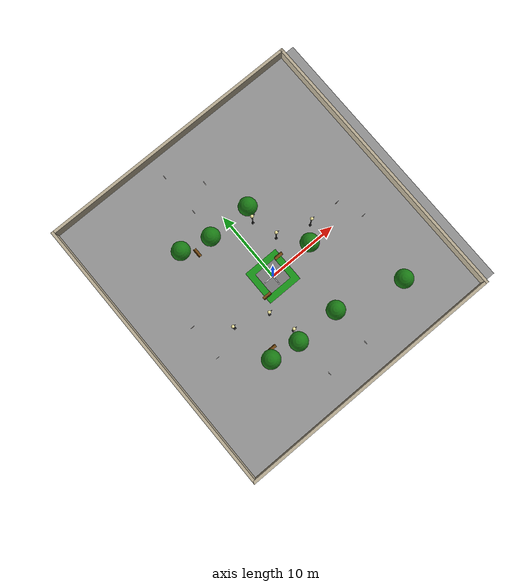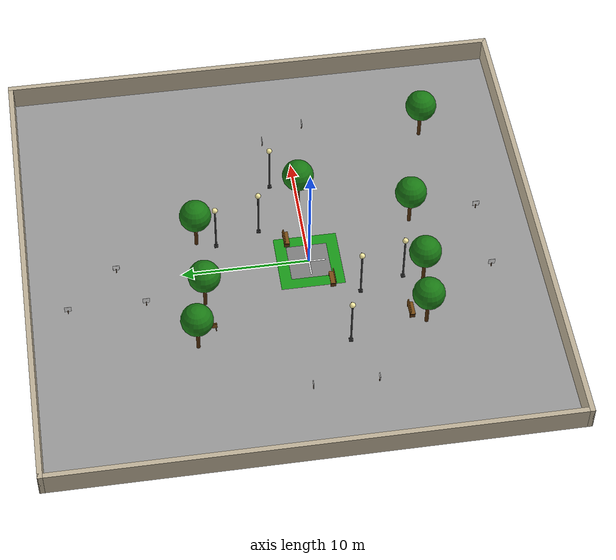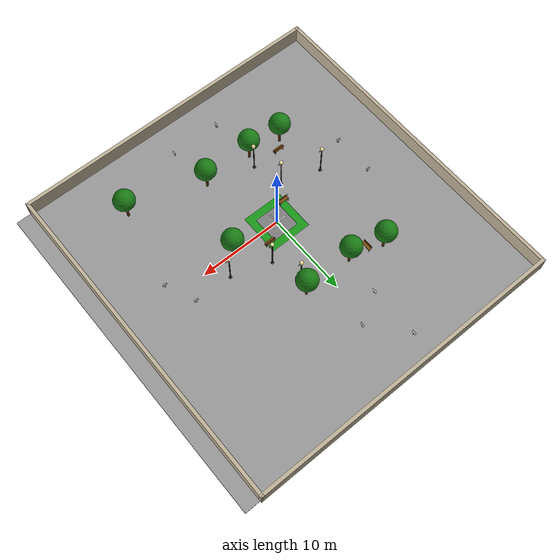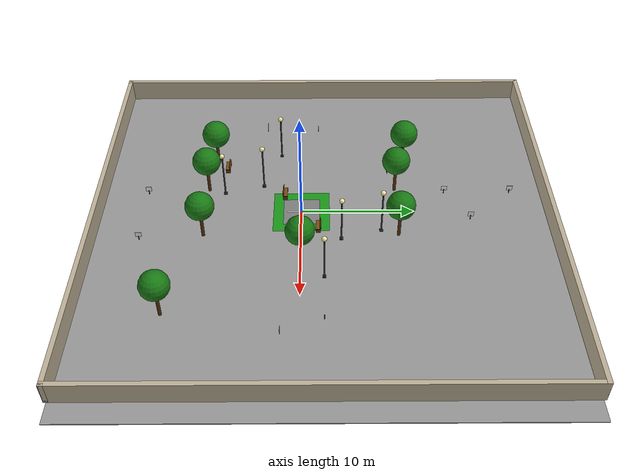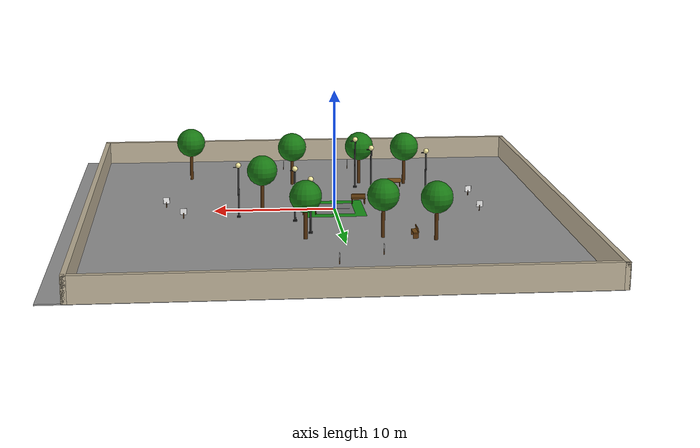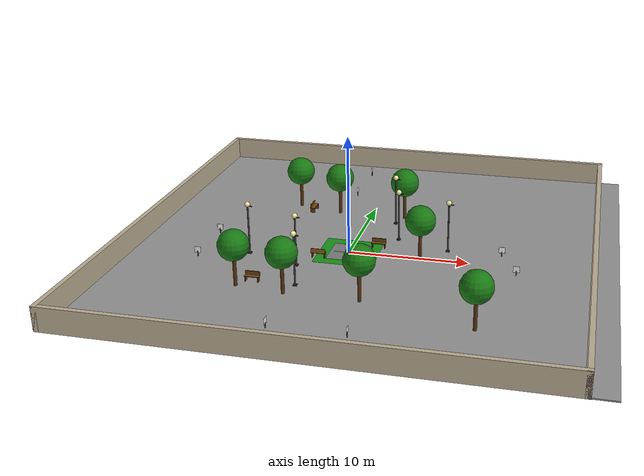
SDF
<sdf version="1.6">
 <world name="mixed_town_v2">
  <gravity>0 0 -9.8</gravity>
  <physics type="ode">
   <real_time_update_rate>200.0</real_time_update_rate>
   <max_step_size>0.005</max_step_size>
   <real_time_factor>1</real_time_factor>
   <ode>
    <solver><type>quick</type><iters>40</iters><sor>1.3</sor></solver>
    <constraints>
     <cfm>0.0001</cfm>
     <erp>0.2</erp>
     <contact_max_correcting_vel>5.0</contact_max_correcting_vel>
     <contact_surface_layer>0.002</contact_surface_layer>
    </constraints>
   </ode>
  </physics>
  <scene>
   <ambient>0.70 0.70 0.70 1</ambient>
   <background>0.55 0.82 0.94 1</background>
   <shadows>false</shadows>
  </scene>
  <plugin filename="gz-sim-physics-system" name="gz::sim::systems::Physics"/>
  <plugin filename="gz-sim-user-commands-system" name="gz::sim::systems::UserCommands"/>
  <plugin filename="gz-sim-scene-broadcaster-system" name="gz::sim::systems::SceneBroadcaster"/>
  <plugin filename="gz-sim-sensors-system" name="gz::sim::systems::Sensors">
   <render_engine>ogre2</render_engine>
  </plugin>
  <plugin filename="gz-sim-imu-system" name="gz::sim::systems::Imu"/>
  <include><uri>model://sun</uri></include>
  <model name="grey_ground">
   <static>true</static>
   <pose>2 2 -0.05 0 0 0</pose>
   <link name="link">
    <collision name="col"><geometry><box><size>40 40 0.1</size></box></geometry></collision>
    <visual name="vis">
     <geometry><box><size>40 40 0.1</size></box></geometry>
     <material>
      <ambient>1 1 1 1</ambient>
      <diffuse>1 1 1 1</diffuse>
      <script><uri>file://media/materials/scripts/gazebo.material</uri><name>Gazebo/Grey</name></script>
     </material>
    </visual>
   </link>
  </model>
  <model name="wall_north">
   <static>true</static>
   <pose>1 22 1 0 0 0</pose>
   <link name="link">
    <collision name="col"><geometry><box><size>38.4 0.4 2</size></box></geometry></collision>
    <visual name="vis">
     <geometry><box><size>38.4 0.4 2</size></box></geometry>
     <material><ambient>0.75 0.70 0.60 1</ambient><diffuse>0.75 0.70 0.60 1</diffuse></material>
    </visual>
   </link>
  </model>
  <model name="wall_south">
   <static>true</static>
   <pose>1 -18 1 0 0 0</pose>
   <link name="link">
    <collision name="col"><geometry><box><size>38.4 0.4 2</size></box></geometry></collision>
    <visual name="vis">
     <geometry><box><size>38.4 0.4 2</size></box></geometry>
     <material><ambient>0.75 0.70 0.60 1</ambient><diffuse>0.75 0.70 0.60 1</diffuse></material>
    </visual>
   </link>
  </model>
  <model name="wall_east">
   <static>true</static>
   <pose>20 2 1 0 0 0</pose>
   <link name="link">
    <collision name="col"><geometry><box><size>0.4 40.4 2</size></box></geometry></collision>
    <visual name="vis">
     <geometry><box><size>0.4 40.4 2</size></box></geometry>
     <material><ambient>0.75 0.70 0.60 1</ambient><diffuse>0.75 0.70 0.60 1</diffuse></material>
    </visual>
   </link>
  </model>
  <model name="wall_west">
   <static>true</static>
   <pose>-18 2 1 0 0 0</pose>
   <link name="link">
    <collision name="col"><geometry><box><size>0.4 40.4 2</size></box></geometry></collision>
    <visual name="vis">
     <geometry><box><size>0.4 40.4 2</size></box></geometry>
     <material><ambient>0.75 0.70 0.60 1</ambient><diffuse>0.75 0.70 0.60 1</diffuse></material>
    </visual>
   </link>
  </model>
  <model name="green_station_area">
   <static>true</static>
   <pose>0 0 0.0005 0 0 0</pose>
   <link name="link">
    <visual name="vis">
     <geometry><box><size>5 5 0.001</size></box></geometry>
     <material><ambient>0.10 0.60 0.10 1</ambient><diffuse>0.10 0.60 0.10 1</diffuse></material>
    </visual>
   </link>
  </model>
  <model name="docking_station">
   <static>true</static>
   <pose>0 0 0.0015 0 0 0</pose>
   <link name="link">
    <visual name="vis">
     <geometry><box><size>3.2 3.2 0.001</size></box></geometry>
     <material><ambient>0.50 0.50 0.50 1</ambient><diffuse>0.50 0.50 0.50 1</diffuse></material>
    </visual>
   </link>
  </model>
  <model name="dock_cross_h">
   <static>true</static>
   <pose>0 0 0.002 0 0 0</pose>
   <link name="link">
    <visual name="v">
     <geometry><box><size>2.6 0.12 0.001</size></box></geometry>
     <material><ambient>0.92 0.92 0.92 1</ambient><diffuse>0.92 0.92 0.92 1</diffuse></material>
    </visual>
   </link>
  </model>
  <model name="dock_cross_v">
   <static>true</static>
   <pose>0 0 0.002 0 0 0</pose>
   <link name="link">
    <visual name="v">
     <geometry><box><size>0.12 2.6 0.001</size></box></geometry>
     <material><ambient>0.92 0.92 0.92 1</ambient><diffuse>0.92 0.92 0.92 1</diffuse></material>
    </visual>
   </link>
  </model>
  <include><name>lamp_plaza_ne</name><uri>model://street_lamp</uri><pose>3.5 3.5 0 0 0 0</pose></include>
  <include><name>lamp_plaza_sw</name><uri>model://street_lamp</uri><pose>-3.5 -3.5 0 0 0 0</pose></include>
  <include><name>lamp_east_st</name><uri>model://street_lamp</uri><pose>8 2 0 0 0 0</pose></include>
  <include><name>lamp_west_st</name><uri>model://street_lamp</uri><pose>-8 -2 0 0 0 0</pose></include>
  <include><name>lamp_north</name><uri>model://street_lamp</uri><pose>2.5 7 0 0 0 0</pose></include>
  <include><name>lamp_south</name><uri>model://street_lamp</uri><pose>-2.5 -7 0 0 0 0</pose></include>
  <include><name>bench_plaza_1</name><uri>model://bench</uri><pose>2.2 1.5 0 0 0 0</pose></include>
  <include><name>bench_plaza_2</name><uri>model://bench</uri><pose>-2.2 -1.5 0 0 0 3.14159</pose></include>
  <include><name>bench_garden_nw</name><uri>model://bench</uri><pose>-5.5 8.5 0 0 0 1.5708</pose></include>
  <include><name>bench_garden_sw</name><uri>model://bench</uri><pose>-6 -7 0 0 0 0</pose></include>
  <include><name>tree_north_w</name><uri>model://tree</uri><pose>-3 8.5 0 0 0 0</pose></include>
  <include><name>tree_north_e</name><uri>model://tree</uri><pose>3 8.5 0 0 0 0</pose></include>
  <include><name>tree_nw</name><uri>model://tree</uri><pose>-7 9.5 0 0 0 0</pose></include>
  <include><name>tree_sw</name><uri>model://tree</uri><pose>-7 -8 0 0 0 0</pose></include>
  <include><name>tree_south_w</name><uri>model://tree</uri><pose>-3 -8.5 0 0 0 0</pose></include>
  <include><name>tree_south_e</name><uri>model://tree</uri><pose>3 -8.5 0 0 0 0</pose></include>
  <include><name>tree_east_mid</name><uri>model://tree</uri><pose>6 0 0 0 0 0</pose></include>
  <include><name>tree_east_south</name><uri>model://tree</uri><pose>12 -11 0 0 0 0</pose></include>
  <include><name>sign_house_1</name><uri>model://sign_house_1</uri><pose>-2.5 13.0 0 0 0 1.5708</pose></include>
  <include><name>sign_house_2</name><uri>model://sign_house_2</uri><pose>-2.5 19.0 0 0 0 1.5708</pose></include>
  <include><name>sign_house_3</name><uri>model://sign_house_3</uri><pose>1.0 15.0 0 0 0 -1.5708</pose></include>
  <include>
   <name>sign_house_4</name>
   <uri>model://sign_house_4</uri>
   <pose>-2.5 -14.0 0 0 0 1.5708</pose>
  </include>
  <include>
   <name>sign_house_5</name>
   <uri>model://sign_house_5</uri>
   <pose>3.5 -14.0 0 0 0 -1.5708</pose>
  </include>
  <include><name>sign_pharmacy</name><uri>model://sign_pharmacy</uri><pose>-12.0 1.5 0 0 0 0.0</pose></include>
  <include>
   <name>sign_fire_station</name>
   <uri>model://sign_fire_station</uri>
   <pose>-12.0 -3.5 0 0 0 3.14159</pose>
  </include>
  <include>
   <name>sign_restaurant</name>
   <uri>model://sign_restaurant</uri>
   <pose>14.0 -1.5 0 0 0 3.14159</pose>
  </include>
  <include>
   <name>sign_supermarket</name>
   <uri>model://sign_supermarket</uri>
   <pose>12.5 2.0 0 0 0 0.0</pose>
  </include>
 </world>
</sdf>

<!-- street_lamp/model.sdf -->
<!-- Street lamp: 4m dark metal pole with emissive yellow sphere head -->
<sdf version="1.6">
  <model name="street_lamp">
    <static>true</static>
    <link name="link">

      <!-- Pole collision -->
      <collision name="col_pole">
        <pose>0 0 2.0 0 0 0</pose>
        <geometry><cylinder><radius>0.07</radius><length>4.0</length></cylinder></geometry>
      </collision>

      <!-- Base plate -->
      <visual name="base">
        <pose>0 0 0.05 0 0 0</pose>
        <geometry><box><size>0.3 0.3 0.1</size></box></geometry>
        <material>
          <ambient>0.20 0.20 0.20 1</ambient>
          <diffuse>0.20 0.20 0.20 1</diffuse>
        </material>
      </visual>

      <!-- Pole -->
      <visual name="pole">
        <pose>0 0 2.1 0 0 0</pose>
        <geometry><cylinder><radius>0.065</radius><length>4.0</length></cylinder></geometry>
        <material>
          <ambient>0.22 0.22 0.22 1</ambient>
          <diffuse>0.22 0.22 0.22 1</diffuse>
          <specular>0.3 0.3 0.3 1</specular>
        </material>
      </visual>

      <!-- Arm bracket -->
      <visual name="arm">
        <pose>0.2 0 4.2 0 0 0</pose>
        <geometry><box><size>0.4 0.06 0.06</size></box></geometry>
        <material>
          <ambient>0.22 0.22 0.22 1</ambient>
          <diffuse>0.22 0.22 0.22 1</diffuse>
        </material>
      </visual>

      <!-- Lamp head (emissive sphere) -->
      <visual name="head">
        <pose>0 0 4.35 0 0 0</pose>
        <geometry><sphere><radius>0.22</radius></sphere></geometry>
        <material>
          <ambient>1.0 0.95 0.65 1</ambient>
          <diffuse>1.0 0.95 0.65 1</diffuse>
          <emissive>0.90 0.80 0.25 1</emissive>
          <specular>0.5 0.5 0.5 1</specular>
        </material>
      </visual>

    </link>
  </model>
</sdf>

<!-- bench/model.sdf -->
<!-- Park bench: 1.2m wooden seat with backrest. Origin at ground level, seat faces -Y -->
<sdf version="1.6">
  <model name="bench">
    <static>true</static>
    <link name="link">

      <!-- Collision (full envelope) -->
      <collision name="col">
        <pose>0 0 0.35 0 0 0</pose>
        <geometry><box><size>1.2 0.5 0.7</size></box></geometry>
      </collision>

      <!-- Seat surface -->
      <visual name="seat">
        <pose>0 0 0.44 0 0 0</pose>
        <geometry><box><size>1.2 0.42 0.06</size></box></geometry>
        <material>
          <ambient>0.48 0.30 0.08 1</ambient>
          <diffuse>0.48 0.30 0.08 1</diffuse>
          <specular>0.1 0.1 0.1 1</specular>
        </material>
      </visual>

      <!-- Backrest (slightly angled back) -->
      <visual name="backrest">
        <pose>0 0.17 0.62 0.20 0 0</pose>
        <geometry><box><size>1.2 0.07 0.36</size></box></geometry>
        <material>
          <ambient>0.48 0.30 0.08 1</ambient>
          <diffuse>0.48 0.30 0.08 1</diffuse>
        </material>
      </visual>

      <!-- Left leg -->
      <visual name="leg_left">
        <pose>-0.52 0 0.22 0 0 0</pose>
        <geometry><box><size>0.06 0.42 0.44</size></box></geometry>
        <material>
          <ambient>0.38 0.22 0.06 1</ambient>
          <diffuse>0.38 0.22 0.06 1</diffuse>
        </material>
      </visual>

      <!-- Right leg -->
      <visual name="leg_right">
        <pose>0.52 0 0.22 0 0 0</pose>
        <geometry><box><size>0.06 0.42 0.44</size></box></geometry>
        <material>
          <ambient>0.38 0.22 0.06 1</ambient>
          <diffuse>0.38 0.22 0.06 1</diffuse>
        </material>
      </visual>

    </link>
  </model>
</sdf>

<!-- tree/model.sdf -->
<!-- Simple tree: brown trunk cylinder + green foliage sphere. Origin at ground level -->
<sdf version="1.6">
  <model name="tree">
    <static>true</static>
    <link name="link">

      <!-- Trunk collision -->
      <collision name="col_trunk">
        <pose>0 0 1.2 0 0 0</pose>
        <geometry><cylinder><radius>0.14</radius><length>2.4</length></cylinder></geometry>
      </collision>

      <!-- Foliage collision (sphere approximation) -->
      <collision name="col_foliage">
        <pose>0 0 3.4 0 0 0</pose>
        <geometry><sphere><radius>1.25</radius></sphere></geometry>
      </collision>

      <!-- Trunk -->
      <visual name="trunk">
        <pose>0 0 1.2 0 0 0</pose>
        <geometry><cylinder><radius>0.14</radius><length>2.4</length></cylinder></geometry>
        <material>
          <ambient>0.32 0.18 0.04 1</ambient>
          <diffuse>0.32 0.18 0.04 1</diffuse>
          <specular>0.05 0.05 0.05 1</specular>
        </material>
      </visual>

      <!-- Foliage -->
      <visual name="foliage">
        <pose>0 0 3.4 0 0 0</pose>
        <geometry><sphere><radius>1.25</radius></sphere></geometry>
        <material>
          <ambient>0.10 0.48 0.08 1</ambient>
          <diffuse>0.10 0.48 0.08 1</diffuse>
          <specular>0.05 0.1 0.05 1</specular>
        </material>
      </visual>

    </link>
  </model>
</sdf>

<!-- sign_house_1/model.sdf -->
<sdf version="1.6">
  <model name="sign_house_1">
    <static>true</static>
    <link name="link">

      <!-- wooden pole: 0.45 m tall, centre Z=0.225 -->
      <visual name="pole">
        <pose>0 0 0.225 0 0 0</pose>
        <geometry><box><size>0.06 0.06 0.45</size></box></geometry>
        <material>
          <ambient>0.35 0.22 0.10 1</ambient>
          <diffuse>0.35 0.22 0.10 1</diffuse>
        </material>
      </visual>
      <collision name="pole_col">
        <pose>0 0 0.225 0 0 0</pose>
        <geometry><box><size>0.06 0.06 0.45</size></box></geometry>
      </collision>

      <!-- QR board body: white backing (0.52 x 0.52 m), centre Z=0.58 -->
      <visual name="board_body">
        <pose>0 0 0.58 0 0 0</pose>
        <geometry><box><size>0.52 0.02 0.52</size></box></geometry>
        <material>
          <ambient>0.95 0.95 0.95 1</ambient>
          <diffuse>0.95 0.95 0.95 1</diffuse>
        </material>
      </visual>
      <!-- QR face: ultra-thin overlay on local -Y side only.
           The white board body hides the +Y (back) face of this overlay,
           so the QR is effectively one-sided (front face only). -->
      <visual name="board_qr">
        <pose>0 -0.011 0.58 0 0 0</pose>
        <geometry><box><size>0.50 0.001 0.50</size></box></geometry>
        <material>
          <ambient>1 1 1 1</ambient>
          <diffuse>1 1 1 1</diffuse>
          <pbr>
            <metal>
              <albedo_map>model://sign_house_1/materials/textures/qr_house_1.png</albedo_map>
            </metal>
          </pbr>
        </material>
      </visual>
      <collision name="board_col">
        <pose>0 0 0.58 0 0 0</pose>
        <geometry><box><size>0.52 0.02 0.52</size></box></geometry>
      </collision>

    </link>
  </model>
</sdf>

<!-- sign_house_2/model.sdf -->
<sdf version="1.6">
  <model name="sign_house_2">
    <static>true</static>
    <link name="link">

      <!-- wooden pole: 0.45 m tall, centre Z=0.225 -->
      <visual name="pole">
        <pose>0 0 0.225 0 0 0</pose>
        <geometry><box><size>0.06 0.06 0.45</size></box></geometry>
        <material>
          <ambient>0.35 0.22 0.10 1</ambient>
          <diffuse>0.35 0.22 0.10 1</diffuse>
        </material>
      </visual>
      <collision name="pole_col">
        <pose>0 0 0.225 0 0 0</pose>
        <geometry><box><size>0.06 0.06 0.45</size></box></geometry>
      </collision>

      <!-- QR board body: white backing (0.52 x 0.52 m), centre Z=0.58 -->
      <visual name="board_body">
        <pose>0 0 0.58 0 0 0</pose>
        <geometry><box><size>0.52 0.02 0.52</size></box></geometry>
        <material>
          <ambient>0.95 0.95 0.95 1</ambient>
          <diffuse>0.95 0.95 0.95 1</diffuse>
        </material>
      </visual>
      <!-- QR face: ultra-thin overlay on local -Y side only.
           The white board body hides the +Y (back) face of this overlay,
           so the QR is effectively one-sided (front face only). -->
      <visual name="board_qr">
        <pose>0 -0.011 0.58 0 0 0</pose>
        <geometry><box><size>0.50 0.001 0.50</size></box></geometry>
        <material>
          <ambient>1 1 1 1</ambient>
          <diffuse>1 1 1 1</diffuse>
          <pbr>
            <metal>
              <albedo_map>model://sign_house_2/materials/textures/qr_house_2.png</albedo_map>
            </metal>
          </pbr>
        </material>
      </visual>
      <collision name="board_col">
        <pose>0 0 0.58 0 0 0</pose>
        <geometry><box><size>0.52 0.02 0.52</size></box></geometry>
      </collision>

    </link>
  </model>
</sdf>

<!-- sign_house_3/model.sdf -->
<sdf version="1.6">
  <model name="sign_house_3">
    <static>true</static>
    <link name="link">

      <!-- wooden pole: 0.45 m tall, centre Z=0.225 -->
      <visual name="pole">
        <pose>0 0 0.225 0 0 0</pose>
        <geometry><box><size>0.06 0.06 0.45</size></box></geometry>
        <material>
          <ambient>0.35 0.22 0.10 1</ambient>
          <diffuse>0.35 0.22 0.10 1</diffuse>
        </material>
      </visual>
      <collision name="pole_col">
        <pose>0 0 0.225 0 0 0</pose>
        <geometry><box><size>0.06 0.06 0.45</size></box></geometry>
      </collision>

      <!-- QR board body: white backing (0.52 x 0.52 m), centre Z=0.58 -->
      <visual name="board_body">
        <pose>0 0 0.58 0 0 0</pose>
        <geometry><box><size>0.52 0.02 0.52</size></box></geometry>
        <material>
          <ambient>0.95 0.95 0.95 1</ambient>
          <diffuse>0.95 0.95 0.95 1</diffuse>
        </material>
      </visual>
      <!-- QR face: ultra-thin overlay on local -Y side only.
           The white board body hides the +Y (back) face of this overlay,
           so the QR is effectively one-sided (front face only). -->
      <visual name="board_qr">
        <pose>0 -0.011 0.58 0 0 0</pose>
        <geometry><box><size>0.50 0.001 0.50</size></box></geometry>
        <material>
          <ambient>1 1 1 1</ambient>
          <diffuse>1 1 1 1</diffuse>
          <pbr>
            <metal>
              <albedo_map>model://sign_house_3/materials/textures/qr_house_3.png</albedo_map>
            </metal>
          </pbr>
        </material>
      </visual>
      <collision name="board_col">
        <pose>0 0 0.58 0 0 0</pose>
        <geometry><box><size>0.52 0.02 0.52</size></box></geometry>
      </collision>

    </link>
  </model>
</sdf>

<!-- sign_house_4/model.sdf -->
<sdf version="1.6">
  <model name="sign_house_4">
    <static>true</static>
    <link name="link">

      <!-- wooden pole: 0.45 m tall, centre Z=0.225 -->
      <visual name="pole">
        <pose>0 0 0.225 0 0 0</pose>
        <geometry><box><size>0.06 0.06 0.45</size></box></geometry>
        <material>
          <ambient>0.35 0.22 0.10 1</ambient>
          <diffuse>0.35 0.22 0.10 1</diffuse>
        </material>
      </visual>
      <collision name="pole_col">
        <pose>0 0 0.225 0 0 0</pose>
        <geometry><box><size>0.06 0.06 0.45</size></box></geometry>
      </collision>

      <!-- QR board body: white backing (0.52 x 0.52 m), centre Z=0.58 -->
      <visual name="board_body">
        <pose>0 0 0.58 0 0 0</pose>
        <geometry><box><size>0.52 0.02 0.52</size></box></geometry>
        <material>
          <ambient>0.95 0.95 0.95 1</ambient>
          <diffuse>0.95 0.95 0.95 1</diffuse>
        </material>
      </visual>
      <!-- QR face: ultra-thin overlay on local -Y side only.
           The white board body hides the +Y (back) face of this overlay,
           so the QR is effectively one-sided (front face only). -->
      <visual name="board_qr">
        <pose>0 -0.011 0.58 0 0 0</pose>
        <geometry><box><size>0.50 0.001 0.50</size></box></geometry>
        <material>
          <ambient>1 1 1 1</ambient>
          <diffuse>1 1 1 1</diffuse>
          <pbr>
            <metal>
              <albedo_map>model://sign_house_4/materials/textures/qr_house_4.png</albedo_map>
            </metal>
          </pbr>
        </material>
      </visual>
      <collision name="board_col">
        <pose>0 0 0.58 0 0 0</pose>
        <geometry><box><size>0.52 0.02 0.52</size></box></geometry>
      </collision>

    </link>
  </model>
</sdf>

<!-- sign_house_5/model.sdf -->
<sdf version="1.6">
  <model name="sign_house_5">
    <static>true</static>
    <link name="link">

      <!-- wooden pole: 0.45 m tall, centre Z=0.225 -->
      <visual name="pole">
        <pose>0 0 0.225 0 0 0</pose>
        <geometry><box><size>0.06 0.06 0.45</size></box></geometry>
        <material>
          <ambient>0.35 0.22 0.10 1</ambient>
          <diffuse>0.35 0.22 0.10 1</diffuse>
        </material>
      </visual>
      <collision name="pole_col">
        <pose>0 0 0.225 0 0 0</pose>
        <geometry><box><size>0.06 0.06 0.45</size></box></geometry>
      </collision>

      <!-- QR board body: white backing (0.52 x 0.52 m), centre Z=0.58 -->
      <visual name="board_body">
        <pose>0 0 0.58 0 0 0</pose>
        <geometry><box><size>0.52 0.02 0.52</size></box></geometry>
        <material>
          <ambient>0.95 0.95 0.95 1</ambient>
          <diffuse>0.95 0.95 0.95 1</diffuse>
        </material>
      </visual>
      <!-- QR face: ultra-thin overlay on local -Y side only.
           The white board body hides the +Y (back) face of this overlay,
           so the QR is effectively one-sided (front face only). -->
      <visual name="board_qr">
        <pose>0 -0.011 0.58 0 0 0</pose>
        <geometry><box><size>0.50 0.001 0.50</size></box></geometry>
        <material>
          <ambient>1 1 1 1</ambient>
          <diffuse>1 1 1 1</diffuse>
          <pbr>
            <metal>
              <albedo_map>model://sign_house_5/materials/textures/qr.png</albedo_map>
            </metal>
          </pbr>
        </material>
      </visual>
      <collision name="board_col">
        <pose>0 0 0.58 0 0 0</pose>
        <geometry><box><size>0.52 0.02 0.52</size></box></geometry>
      </collision>

    </link>
  </model>
</sdf>

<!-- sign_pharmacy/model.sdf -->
<sdf version="1.6">
  <model name="sign_pharmacy">
    <static>true</static>
    <link name="link">

      <!-- wooden pole: 0.45 m tall, centre Z=0.225 -->
      <visual name="pole">
        <pose>0 0 0.225 0 0 0</pose>
        <geometry><box><size>0.06 0.06 0.45</size></box></geometry>
        <material>
          <ambient>0.35 0.22 0.10 1</ambient>
          <diffuse>0.35 0.22 0.10 1</diffuse>
        </material>
      </visual>
      <collision name="pole_col">
        <pose>0 0 0.225 0 0 0</pose>
        <geometry><box><size>0.06 0.06 0.45</size></box></geometry>
      </collision>

      <!-- QR board body: white backing (0.52 x 0.52 m), centre Z=0.58 -->
      <visual name="board_body">
        <pose>0 0 0.58 0 0 0</pose>
        <geometry><box><size>0.52 0.02 0.52</size></box></geometry>
        <material>
          <ambient>0.95 0.95 0.95 1</ambient>
          <diffuse>0.95 0.95 0.95 1</diffuse>
        </material>
      </visual>
      <!-- QR face: ultra-thin overlay on local -Y side only.
           The white board body hides the +Y (back) face of this overlay,
           so the QR is effectively one-sided (front face only). -->
      <visual name="board_qr">
        <pose>0 -0.011 0.58 0 0 0</pose>
        <geometry><box><size>0.50 0.001 0.50</size></box></geometry>
        <material>
          <ambient>1 1 1 1</ambient>
          <diffuse>1 1 1 1</diffuse>
          <pbr>
            <metal>
              <albedo_map>model://sign_pharmacy/materials/textures/qr_pharmacy.png</albedo_map>
            </metal>
          </pbr>
        </material>
      </visual>
      <collision name="board_col">
        <pose>0 0 0.58 0 0 0</pose>
        <geometry><box><size>0.52 0.02 0.52</size></box></geometry>
      </collision>

    </link>
  </model>
</sdf>

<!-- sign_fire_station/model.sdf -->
<sdf version="1.6">
  <model name="sign_fire_station">
    <static>true</static>
    <link name="link">

      <!-- wooden pole: 0.45 m tall, centre Z=0.225 -->
      <visual name="pole">
        <pose>0 0 0.225 0 0 0</pose>
        <geometry><box><size>0.06 0.06 0.45</size></box></geometry>
        <material>
          <ambient>0.35 0.22 0.10 1</ambient>
          <diffuse>0.35 0.22 0.10 1</diffuse>
        </material>
      </visual>
      <collision name="pole_col">
        <pose>0 0 0.225 0 0 0</pose>
        <geometry><box><size>0.06 0.06 0.45</size></box></geometry>
      </collision>

      <!-- QR board body: white backing (0.52 x 0.52 m), centre Z=0.58 -->
      <visual name="board_body">
        <pose>0 0 0.58 0 0 0</pose>
        <geometry><box><size>0.52 0.02 0.52</size></box></geometry>
        <material>
          <ambient>0.95 0.95 0.95 1</ambient>
          <diffuse>0.95 0.95 0.95 1</diffuse>
        </material>
      </visual>
      <!-- QR face: ultra-thin overlay on local -Y side only.
           The white board body hides the +Y (back) face of this overlay,
           so the QR is effectively one-sided (front face only). -->
      <visual name="board_qr">
        <pose>0 -0.011 0.58 0 0 0</pose>
        <geometry><box><size>0.50 0.001 0.50</size></box></geometry>
        <material>
          <ambient>1 1 1 1</ambient>
          <diffuse>1 1 1 1</diffuse>
          <pbr>
            <metal>
              <albedo_map>model://sign_fire_station/materials/textures/qr.png</albedo_map>
            </metal>
          </pbr>
        </material>
      </visual>
      <collision name="board_col">
        <pose>0 0 0.58 0 0 0</pose>
        <geometry><box><size>0.52 0.02 0.52</size></box></geometry>
      </collision>

    </link>
  </model>
</sdf>

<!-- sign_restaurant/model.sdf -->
<sdf version="1.6">
  <model name="sign_restaurant">
    <static>true</static>
    <link name="link">

      <!-- wooden pole: 0.45 m tall, centre Z=0.225 -->
      <visual name="pole">
        <pose>0 0 0.225 0 0 0</pose>
        <geometry><box><size>0.06 0.06 0.45</size></box></geometry>
        <material>
          <ambient>0.35 0.22 0.10 1</ambient>
          <diffuse>0.35 0.22 0.10 1</diffuse>
        </material>
      </visual>
      <collision name="pole_col">
        <pose>0 0 0.225 0 0 0</pose>
        <geometry><box><size>0.06 0.06 0.45</size></box></geometry>
      </collision>

      <!-- QR board body: white backing (0.52 x 0.52 m), centre Z=0.58 -->
      <visual name="board_body">
        <pose>0 0 0.58 0 0 0</pose>
        <geometry><box><size>0.52 0.02 0.52</size></box></geometry>
        <material>
          <ambient>0.95 0.95 0.95 1</ambient>
          <diffuse>0.95 0.95 0.95 1</diffuse>
        </material>
      </visual>
      <!-- QR face: ultra-thin overlay on local -Y side only.
           The white board body hides the +Y (back) face of this overlay,
           so the QR is effectively one-sided (front face only). -->
      <visual name="board_qr">
        <pose>0 -0.011 0.58 0 0 0</pose>
        <geometry><box><size>0.50 0.001 0.50</size></box></geometry>
        <material>
          <ambient>1 1 1 1</ambient>
          <diffuse>1 1 1 1</diffuse>
          <pbr>
            <metal>
              <albedo_map>model://sign_restaurant/materials/textures/qr_restaurant.png</albedo_map>
            </metal>
          </pbr>
        </material>
      </visual>
      <collision name="board_col">
        <pose>0 0 0.58 0 0 0</pose>
        <geometry><box><size>0.52 0.02 0.52</size></box></geometry>
      </collision>

    </link>
  </model>
</sdf>

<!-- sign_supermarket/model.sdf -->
<sdf version="1.6">
  <model name="sign_supermarket">
    <static>true</static>
    <link name="link">

      <!-- wooden pole: 0.45 m tall, centre Z=0.225 -->
      <visual name="pole">
        <pose>0 0 0.225 0 0 0</pose>
        <geometry><box><size>0.06 0.06 0.45</size></box></geometry>
        <material>
          <ambient>0.35 0.22 0.10 1</ambient>
          <diffuse>0.35 0.22 0.10 1</diffuse>
        </material>
      </visual>
      <collision name="pole_col">
        <pose>0 0 0.225 0 0 0</pose>
        <geometry><box><size>0.06 0.06 0.45</size></box></geometry>
      </collision>

      <!-- QR board body: white backing (0.52 x 0.52 m), centre Z=0.58 -->
      <visual name="board_body">
        <pose>0 0 0.58 0 0 0</pose>
        <geometry><box><size>0.52 0.02 0.52</size></box></geometry>
        <material>
          <ambient>0.95 0.95 0.95 1</ambient>
          <diffuse>0.95 0.95 0.95 1</diffuse>
        </material>
      </visual>
      <!-- QR face: ultra-thin overlay on local -Y side only.
           The white board body hides the +Y (back) face of this overlay,
           so the QR is effectively one-sided (front face only). -->
      <visual name="board_qr">
        <pose>0 -0.011 0.58 0 0 0</pose>
        <geometry><box><size>0.50 0.001 0.50</size></box></geometry>
        <material>
          <ambient>1 1 1 1</ambient>
          <diffuse>1 1 1 1</diffuse>
          <pbr>
            <metal>
              <albedo_map>model://sign_supermarket/materials/textures/qr.png</albedo_map>
            </metal>
          </pbr>
        </material>
      </visual>
      <collision name="board_col">
        <pose>0 0 0.58 0 0 0</pose>
        <geometry><box><size>0.52 0.02 0.52</size></box></geometry>
      </collision>

    </link>
  </model>
</sdf>
